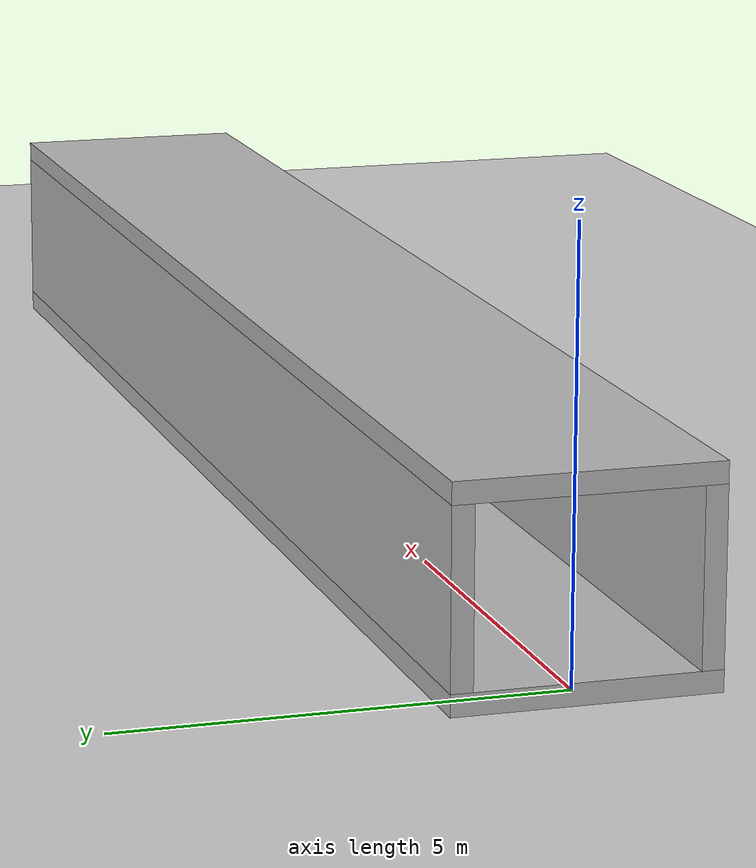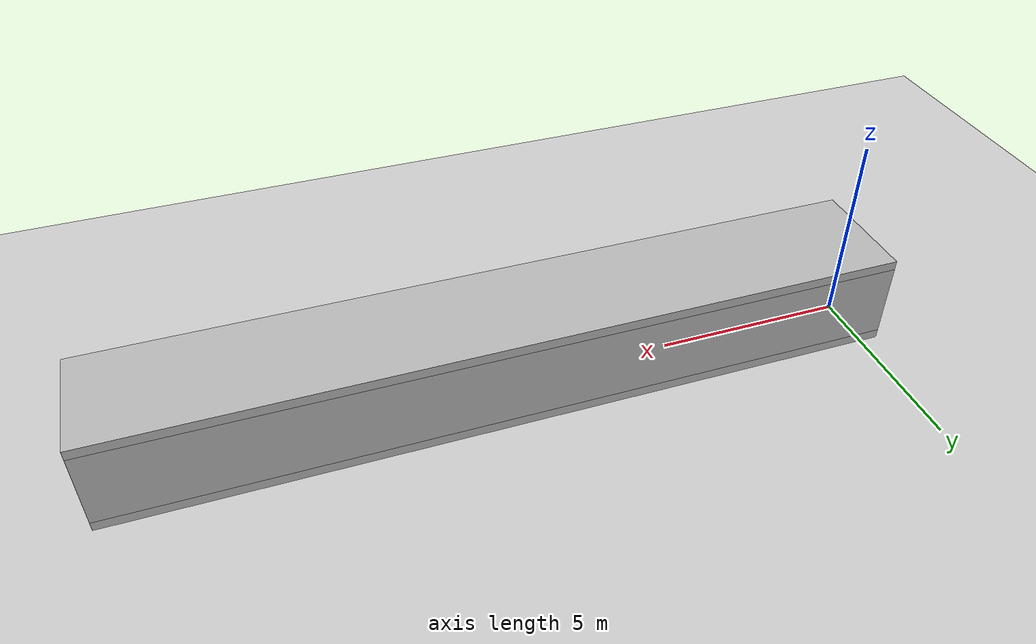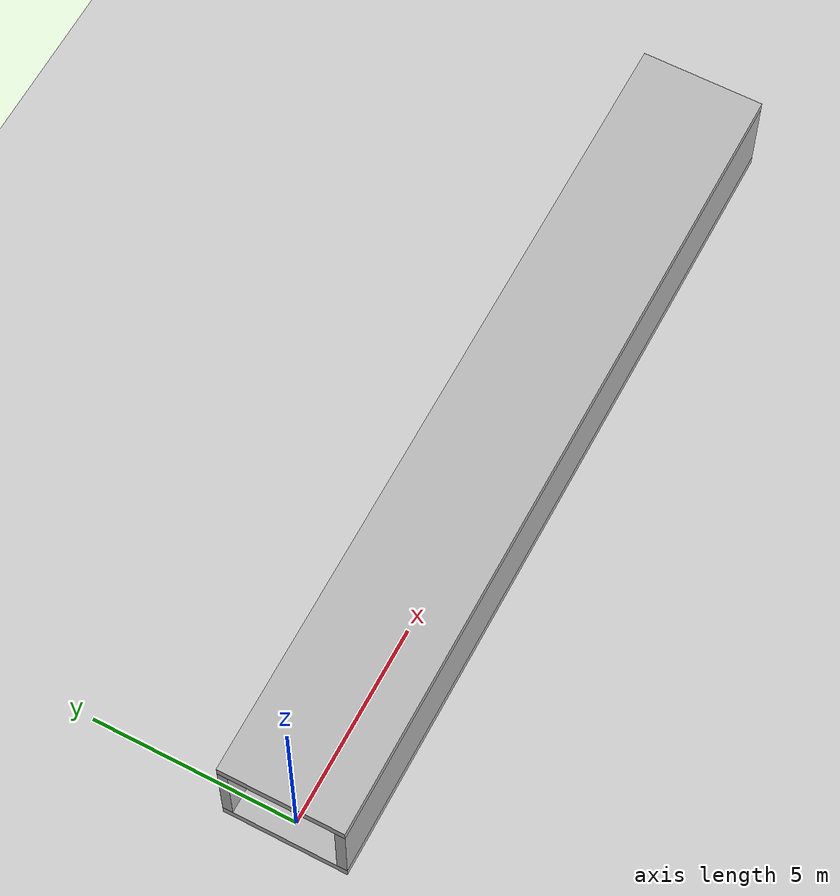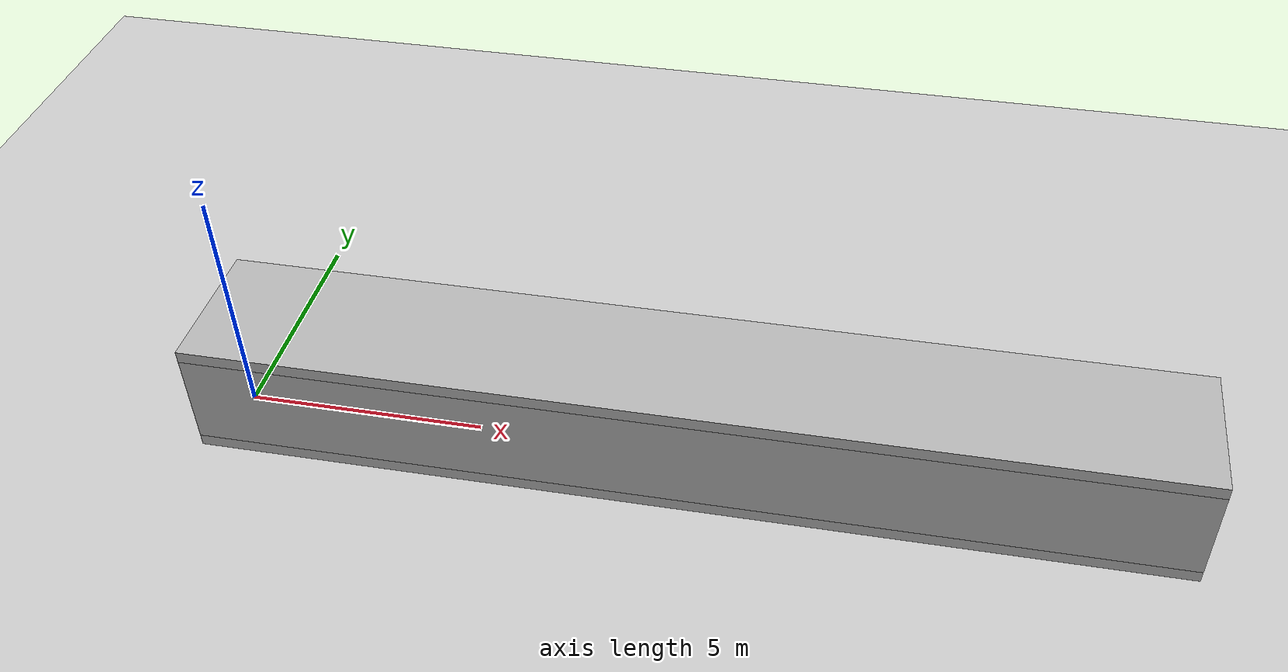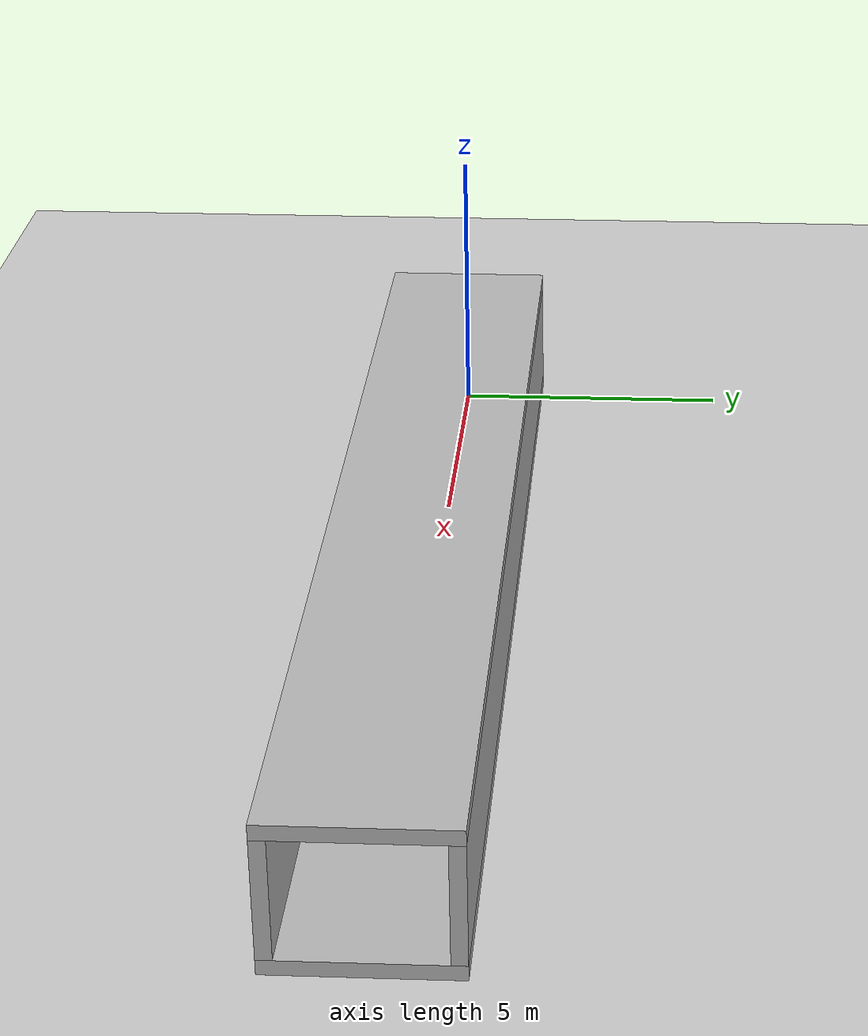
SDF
<?xml version="1.0" ?>
<sdf version="1.5">
  <world name="default">
    <!-- A global light source -->
    <!-- A ground plane -->
    <include>
      <uri>model://ground_plane</uri>
    </include>

<model name="my_mesh">
  <pose>9.5 0 .125 0 0 0</pose>
    <static>true</static>

    <link name="robot_link1">
      <collision name="body_collision1">
        <geometry>
          <box>
            <size>20 3.0 .25</size>
          </box>
        </geometry>
      </collision>
      <visual name="body_visual1">
        <geometry>
          <box>
            <size>20 3.0 .25</size>
          </box>
        </geometry>
        <material>
          <script>
            <uri>
              model://meshes//example_model/materials/scripts/repeated1.material
            </uri>
            <name> RepeatedTexture1 </name>
          </script>
        </material>
      </visual>
    </link>
  </model>

  <model name="Color Tutorial Modl">
    <static>true</static>
    <pose>9.5 1.375 1.25 0 0 0</pose>
    <link name="robot_link">
      <collision name="body_collision">
        <geometry>
          <box>
            <size>20 .25 2</size>
          </box>
        </geometry>
      </collision>
      <visual name="body_visual">
        <geometry>
          <box>
            <size>20 .25 2</size>
          </box>
        </geometry>
        <material>
          <script>
            <uri>
              model://meshes//example_model/materials/scripts/repeated2.material
            </uri>
            <name> RepeatedTexture2 </name>
          </script>
        </material>
      </visual>
    </link>
  </model>

  <model name="Color Tutorial ">
    <static>true</static>
    <pose>9.5 -1.375 1.25 0 0 0</pose>
    <link name="robot_link2">
      <collision name="body_collision2">
        <geometry>
          <box>
            <size>20 .25 2</size>
          </box>
        </geometry>
      </collision>
      <visual name="body_visual2">
        <geometry>
          <box>
            <size>20 .25 2</size>
          </box>
        </geometry>
        <material>
          <script>
            <uri>
              model://meshes//example_model/materials/scripts/repeated3.material
            </uri>
            <name> RepeatedTexture3 </name>
          </script>
        </material>
      </visual>
    </link>
  </model>

<model name="my_mesh2">
  <pose>9.5 0 2.375 0 0 0</pose>
    <static>true</static>

    <link name="robot_link1">
      <collision name="body_collision1">
        <geometry>
          <box>
            <size>20 3.0 .25</size>
          </box>
        </geometry>
      </collision>
      <visual name="body_visual1">
        <geometry>
          <box>
            <size>20 3.0 .25</size>
          </box>
        </geometry>
        <material>
          <script>
            <uri>
              model://meshes//example_model/materials/scripts/repeated4.material
            </uri>
            <name> RepeatedTexture4 </name>
          </script>
        </material>
      </visual>
    </link>
  </model>

  </world>
</sdf>
